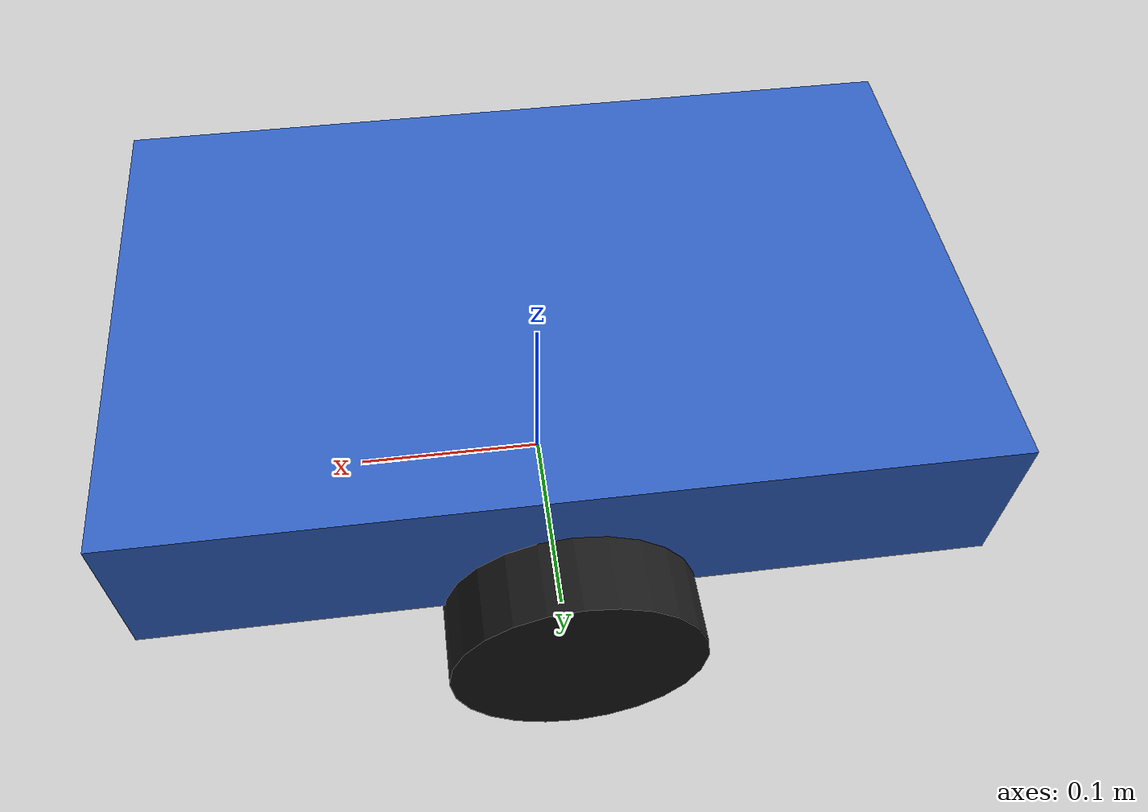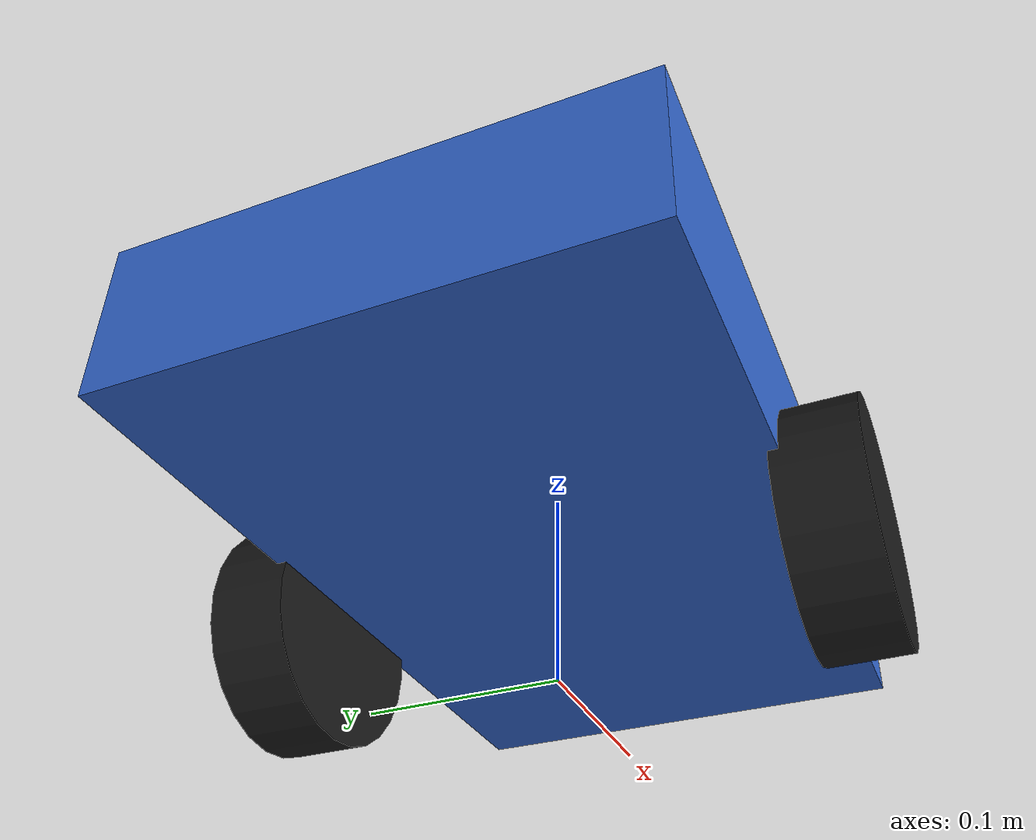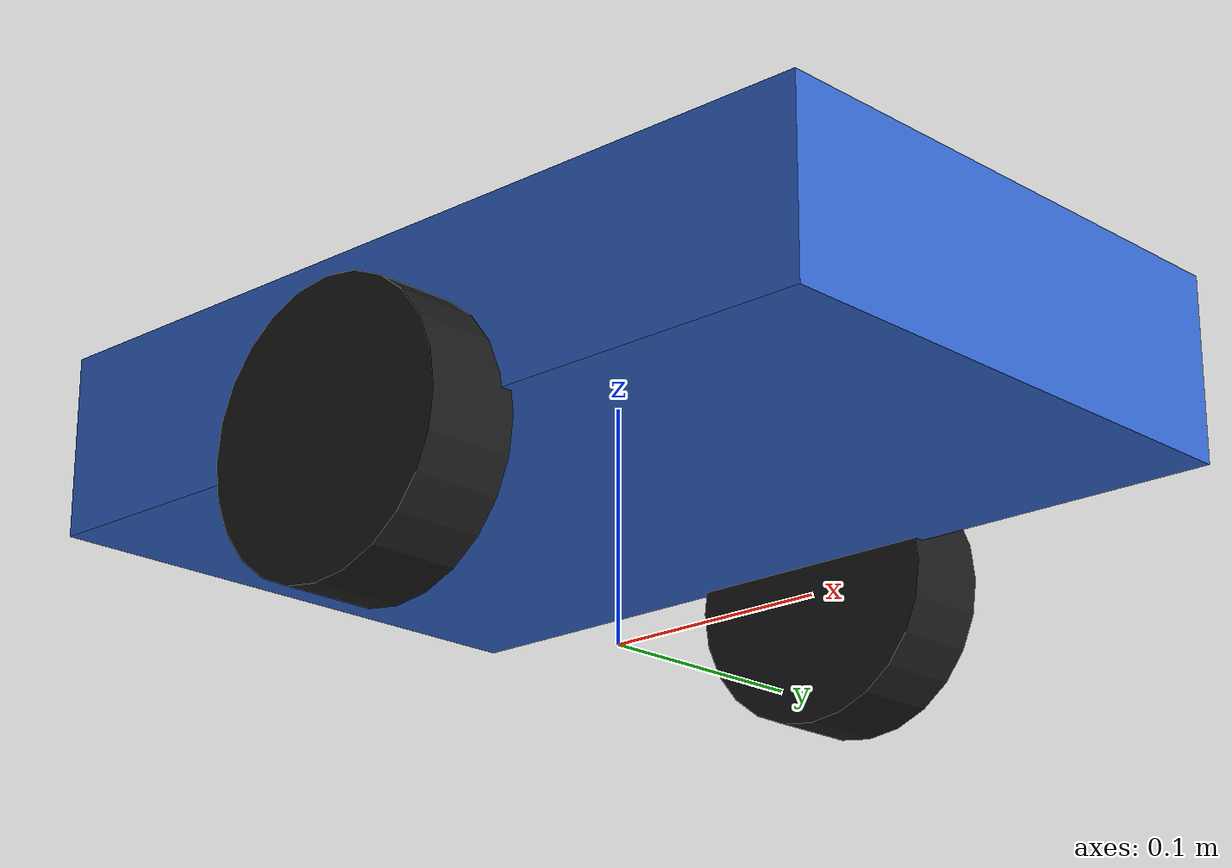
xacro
<?xml version="1.0"?>
<robot name="differential_drive_robot" xmlns:xacro="http://wiki.ros.org/xacro">

    <xacro:arg name="lidar_profile" default="balanced" />
    <xacro:property name="lidar_profile_value" value="$(arg lidar_profile)" />

    <xacro:include filename="$(find differential_drive_robot)/urdf/properties.xacro" />
    <xacro:include filename="$(find differential_drive_robot)/urdf/materials.xacro" />
    <xacro:include filename="$(find differential_drive_robot)/urdf/base.xacro" />
    <xacro:include filename="$(find differential_drive_robot)/urdf/sensors.xacro" />
    <xacro:include filename="$(find differential_drive_robot)/urdf/wheels.xacro" />
    <xacro:include filename="$(find differential_drive_robot)/urdf/gazebo_plugins.xacro" />
    <xacro:include filename="$(find differential_drive_robot)/urdf/ros2_control.xacro" />

</robot>

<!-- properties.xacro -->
<robot xmlns:xacro="http://wiki.ros.org/xacro">
    <xacro:property name="wheel_radius" value="0.06" />
    <xacro:property name="wheel_width" value="0.04" />
    <xacro:property name="wheel_separation" value="0.28" />
    <xacro:property name="base_length" value="0.40" />
    <xacro:property name="base_width" value="0.25" />
    <xacro:property name="base_height" value="0.08" />
    <xacro:property name="caster_radius" value="0.03" />

    <xacro:property name="base_mass" value="1.5" />
    <xacro:property name="wheel_mass" value="0.4" />
    <xacro:property name="caster_mass" value="0.15" />

    <xacro:property name="base_inertia_ixx" value="0.01" />
    <xacro:property name="base_inertia_iyy" value="0.02" />
    <xacro:property name="base_inertia_izz" value="0.02" />

    <xacro:property name="wheel_inertia_ixx" value="0.0008" />
    <xacro:property name="wheel_inertia_iyy" value="0.0014" />
    <xacro:property name="wheel_inertia_izz" value="0.0008" />

    <xacro:property name="caster_inertia_ixx" value="0.0002" />
    <xacro:property name="caster_inertia_iyy" value="0.0002" />
    <xacro:property name="caster_inertia_izz" value="0.0002" />

    <xacro:property name="lidar_is_light" value="${lidar_profile_value == 'light'}" />
    <xacro:property name="lidar_update_rate" value="${lidar_is_light and 10 or 12}" />
    <xacro:property name="lidar_samples" value="${lidar_is_light and 360 or 720}" />
    <xacro:property name="lidar_min_angle" value="${lidar_is_light and -1.5708 or -2.35619}" />
    <xacro:property name="lidar_max_angle" value="${lidar_is_light and 1.5708 or 2.35619}" />
    <xacro:property name="lidar_range_min" value="${lidar_is_light and 0.20 or 0.15}" />
    <xacro:property name="lidar_range_max" value="${lidar_is_light and 6.0 or 8.0}" />
    <xacro:property name="lidar_noise_stddev" value="${lidar_is_light and 0.015 or 0.01}" />
</robot>

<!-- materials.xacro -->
<robot xmlns:xacro="http://wiki.ros.org/xacro">
    <material name="blue">
        <color rgba="0.2 0.4 0.8 1.0" />
    </material>

    <material name="black">
        <color rgba="0.1 0.1 0.1 1.0" />
    </material>

    <material name="gray">
        <color rgba="0.6 0.6 0.6 1.0" />
    </material>
</robot>

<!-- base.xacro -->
<robot xmlns:xacro="http://wiki.ros.org/xacro">
    <link name="base_footprint" />

    <link name="base_link">
        <visual>
            <origin xyz="0 0 0.05" rpy="0 0 0" />
            <geometry>
                <box size="${base_length} ${base_width} ${base_height}" />
            </geometry>
            <material name="blue" />
        </visual>

        <collision>
            <origin xyz="0 0 0.05" rpy="0 0 0" />
            <geometry>
                <box size="${base_length} ${base_width} ${base_height}" />
            </geometry>
        </collision>

        <inertial>
            <origin xyz="0 0 0.05" rpy="0 0 0" />
            <mass value="${base_mass}" />
            <inertia ixx="${base_inertia_ixx}" ixy="0.0" ixz="0.0"
                iyy="${base_inertia_iyy}" iyz="0.0"
                izz="${base_inertia_izz}" />
        </inertial>
    </link>

    <joint name="base_footprint_to_base_link_joint" type="fixed">
        <parent link="base_footprint" />
        <child link="base_link" />
        <origin xyz="0 0 0.05" rpy="0 0 0" />
    </joint>
</robot>

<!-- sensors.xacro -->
<robot xmlns:xacro="http://wiki.ros.org/xacro">
    <!-- Sensor frames are centralized here for future IMU/LiDAR/camera additions. -->
    <link name="imu_link">
        <inertial>
            <origin xyz="0 0 0" rpy="0 0 0" />
            <mass value="0.001" />
            <inertia ixx="1e-7" ixy="0.0" ixz="0.0" iyy="1e-7" iyz="0.0" izz="1e-7" />
        </inertial>
    </link>

    <joint name="base_link_to_imu_joint" type="fixed">
        <parent link="base_link" />
        <child link="imu_link" />
        <origin xyz="0 0 0.09" rpy="0 0 0" />
    </joint>

    <link name="lidar_link">
        <inertial>
            <origin xyz="0 0 0" rpy="0 0 0" />
            <mass value="0.01" />
            <inertia ixx="1e-6" ixy="0.0" ixz="0.0" iyy="1e-6" iyz="0.0" izz="1e-6" />
        </inertial>
    </link>

    <joint name="base_link_to_lidar_joint" type="fixed">
        <parent link="base_link" />
        <child link="lidar_link" />
        <origin xyz="0.12 0 0.11" rpy="0 0 0" />
    </joint>

    <gazebo reference="base_link_to_imu_joint">
        <preserveFixedJoint>true</preserveFixedJoint>
    </gazebo>

    <gazebo reference="base_link_to_lidar_joint">
        <preserveFixedJoint>true</preserveFixedJoint>
    </gazebo>
</robot>

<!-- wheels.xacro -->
<robot xmlns:xacro="http://wiki.ros.org/xacro">
    <link name="left_wheel_link">
        <visual>
            <origin xyz="0 0 0" rpy="${pi/2} 0 0" />
            <geometry>
                <cylinder radius="${wheel_radius}" length="${wheel_width}" />
            </geometry>
            <material name="black" />
        </visual>

        <collision>
            <origin xyz="0 0 0" rpy="${pi/2} 0 0" />
            <geometry>
                <cylinder radius="${wheel_radius}" length="${wheel_width}" />
            </geometry>
        </collision>

        <inertial>
            <origin xyz="0 0 0" rpy="0 0 0" />
            <mass value="${wheel_mass}" />
            <inertia ixx="${wheel_inertia_ixx}" ixy="0.0" ixz="0.0"
                iyy="${wheel_inertia_iyy}" iyz="0.0"
                izz="${wheel_inertia_izz}" />
        </inertial>
    </link>

    <link name="right_wheel_link">
        <visual>
            <origin xyz="0 0 0" rpy="${pi/2} 0 0" />
            <geometry>
                <cylinder radius="${wheel_radius}" length="${wheel_width}" />
            </geometry>
            <material name="black" />
        </visual>

        <collision>
            <origin xyz="0 0 0" rpy="${pi/2} 0 0" />
            <geometry>
                <cylinder radius="${wheel_radius}" length="${wheel_width}" />
            </geometry>
        </collision>

        <inertial>
            <origin xyz="0 0 0" rpy="0 0 0" />
            <mass value="${wheel_mass}" />
            <inertia ixx="${wheel_inertia_ixx}" ixy="0.0" ixz="0.0"
                iyy="${wheel_inertia_iyy}" iyz="0.0"
                izz="${wheel_inertia_izz}" />
        </inertial>
    </link>

    <joint name="left_wheel_joint" type="continuous">
        <parent link="base_link" />
        <child link="left_wheel_link" />
        <origin xyz="0 ${wheel_separation/2} 0" rpy="0 0 0" />
        <axis xyz="0 1 0" />
    </joint>

    <joint name="right_wheel_joint" type="continuous">
        <parent link="base_link" />
        <child link="right_wheel_link" />
        <origin xyz="0 ${-wheel_separation/2} 0" rpy="0 0 0" />
        <axis xyz="0 1 0" />
    </joint>
</robot>
